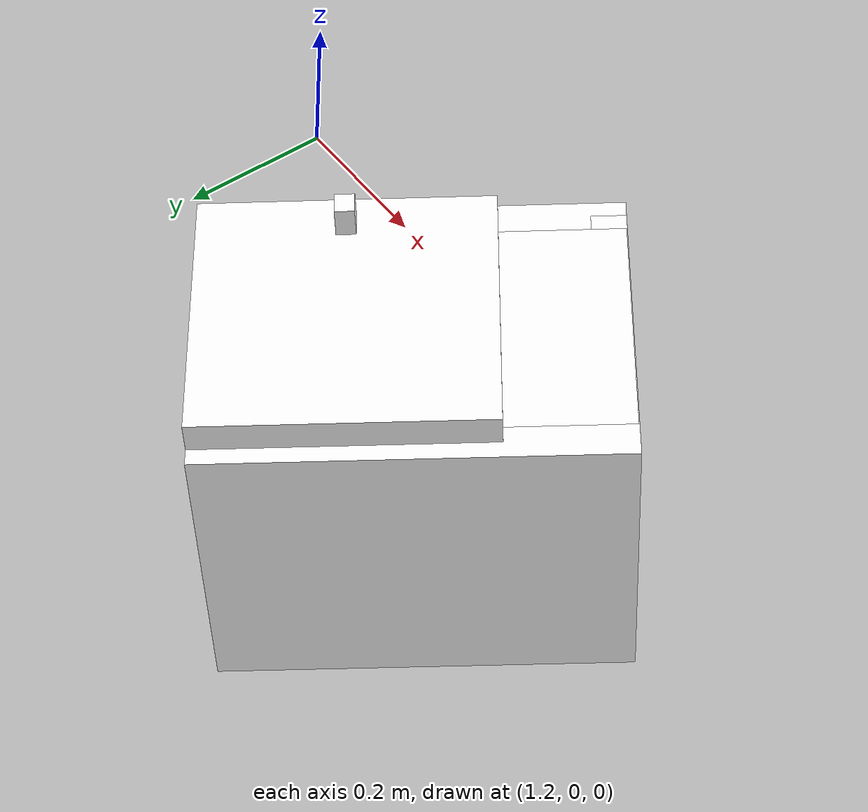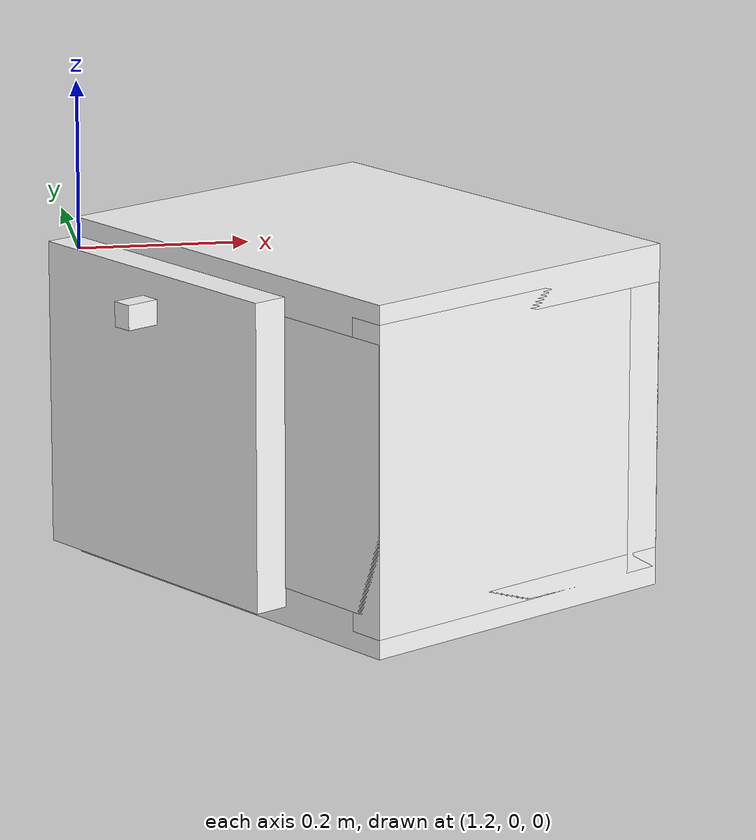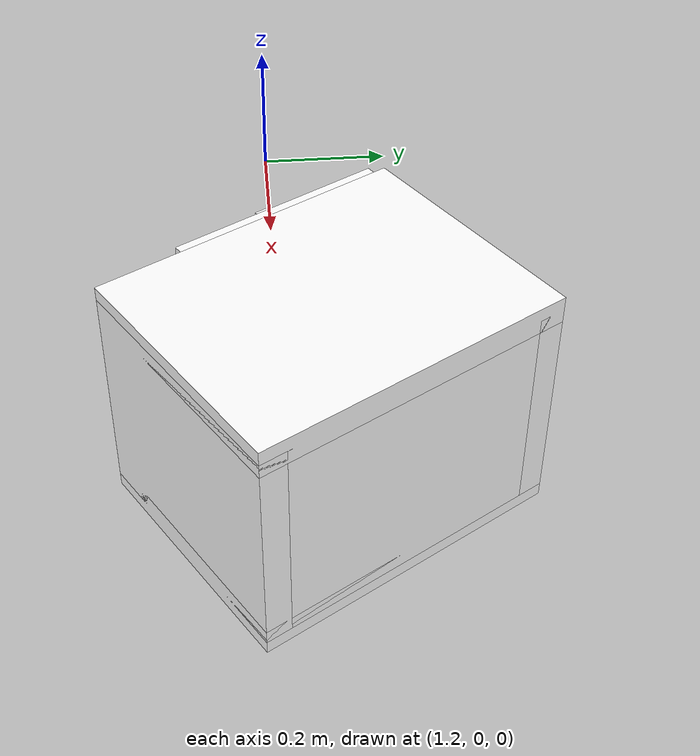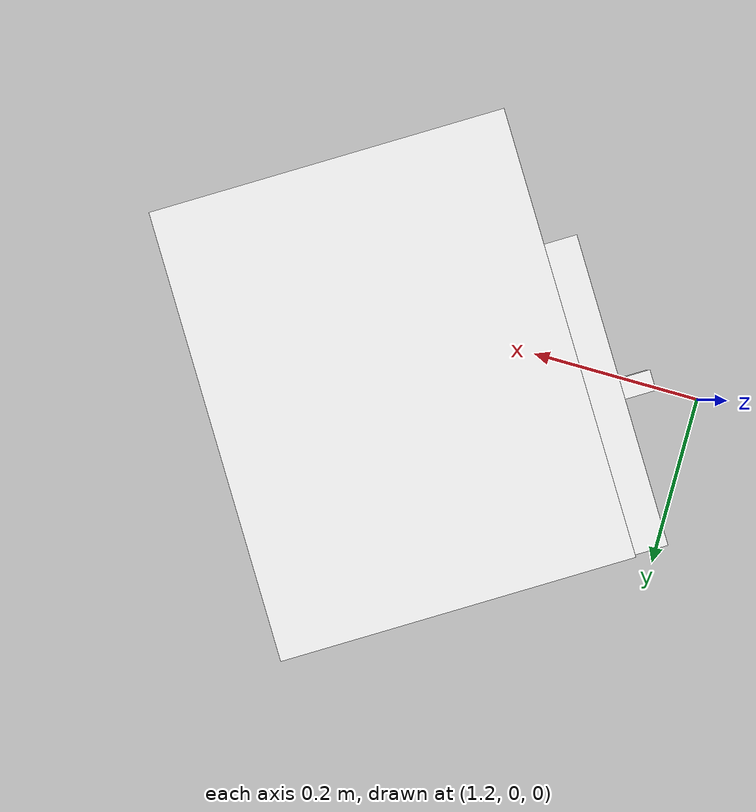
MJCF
<mujoco model="cabinet">
    <compiler angle="radian" eulerseq='zxy' />
    <option gravity = "0 0 0" />
    <option>
        <flag contact = "disable"/>
    </option>
    <statistic	extent="1.0" center="0.0 0.0 0.0"/>
    <visual>
        <map fogstart="3" fogend="5" force="0.1" znear=" 0.100000 " zfar=" 12.000000 "/>
    </visual>
    <size njmax="500" nconmax="100" />
    <actuator>
        <velocity joint="bottom_left_hinge" name="viva_revolution" kv='10'></velocity>
    </actuator>
    <asset>
        <texture builtin="flat" name="tabletex" height="32" width="32" rgb1="1 1 1" type="cube"></texture>
        <texture builtin="flat" name="objtex" height="32" width="32" rgb1="1 1 1" type="cube"></texture>
        <texture builtin="flat" name="handletex" height="32" width="32" rgb1="1 1 1" type="cube"></texture>
        <texture builtin="flat" name="wallpaper" height="32" width="32" rgb1="1 1 1" type="cube"></texture>
        <texture builtin="flat" name="kp" height="32" width="32" rgb1="1 1 1" type="cube"></texture>
        <material name="geomTable" shininess="0.03" specular="0.75" texture="tabletex"></material>
        <material name="geomObj" shininess="0.03" specular="0.75" texture="objtex"></material>
        <material name="geomHandle" shininess="0.03" specular="0.75" texture="handletex"></material>
        <material name="bg" shininess="0.03" specular="0.75" texture="wallpaper"></material>
        <material name="geomKeypad" shininess="0.03" specular="0.75" texture="kp"></material>
    </asset>
    <worldbody>
        <body name="cabinet_bottom" pos= " 1.552156 0.080294 -0.410104 "  quat= " -0.275454 0.000000 0.000000 0.961314" >
            <inertial pos="0 0 0" mass="1" diaginertia="1 1 1" />
            <geom size= " 0.219972 0.278128 0.023392 "  type="box" material="geomObj" name="b"/>
            <body name="cabinet_left" pos= " 0.000000 -0.254736 0.187847 " >
                <inertial pos="0 0 0" mass="1" diaginertia="1 1 1" />
                <geom size= " 0.219972 0.023392 0.187847 "  type="box" material="geomObj" name="c" />
            </body>
            <body name="cabinet_right" pos= " 0.000000 0.254736 0.187847 " >
                <inertial pos="0 0 0" mass="1" diaginertia="1 1 1" />
                <geom size= " 0.219972 0.023392 0.187847 "  type="box" material="geomObj" name="d" />
            </body>
            <body name="cabinet_top" pos= " 0.000000 0.000000 0.375695 " >
                <inertial pos="0 0 0" mass="1" diaginertia="1 1 1" />
                <geom size= " 0.219972 0.278128 0.023392 "  type="box" material="geomObj" name="e"/>
            </body>
            <body name="cabinet_back" pos= " -0.196580 0.000000 0.187847 "  >
                <inertial pos="0 0 0" mass="1" diaginertia="1 1 1" />
                <geom size= " 0.023392 0.278128 0.187847 "  type="box" material="geomObj" name="f" />
            </body>
            <body name="cabinet_keypad" pos= " 0.023392 0.193443 0.187847 " >
                <inertial pos="0 0 0" mass="1" diaginertia="1 1 1" />
                <geom size= " 0.196580 0.083685 0.164455 "  type="box" material="geomKeypad" name="keypizzlemynizzle" />
            </body>
            <body name="cabinet_left_hinge" pos= " 0.219972 -0.083685 0.000000 " >
                <inertial pos= " 0.020000 0.000000 0.187847 "  mass="1" diaginertia="1 1 1" />
                <joint name="bottom_left_hinge" type="hinge" pos="0 0 0" axis="0 1 0" limited="true" range= "0 2.3"  />
                <geom size= " 0.023392 0.194443 0.187847 "  pos= " 0.020000 0.000000 0.187847 "  type="box" material="geomObj" name="g"/>
                <body name="handle_link" pos= " 0.054993 0.000000 0.328910 " >
                    <inertial pos="0 0 0" mass="1" diaginertia="1 1 1" />
                    <geom size= " 0.031119 0.013071 0.015322 "  type="box" material="geomHandle" name="h"/>
                </body>
            </body>
        </body>
        <body name="external_camera_body_0" pos="0.0 0 0.00">
            <camera euler="-1.57 1.57 0.0" fovy=" 54.280851 " name="external_camera_0" pos="0.0 0 0"></camera>
            <inertial pos= " 0.00 0.0 0.000000 " mass="1" diaginertia="1 1 1" />
            <joint name="cam_j" pos="0.0 0 0" axis = "1 0 0" type="free" />
        </body>
    </worldbody>
</mujoco>
